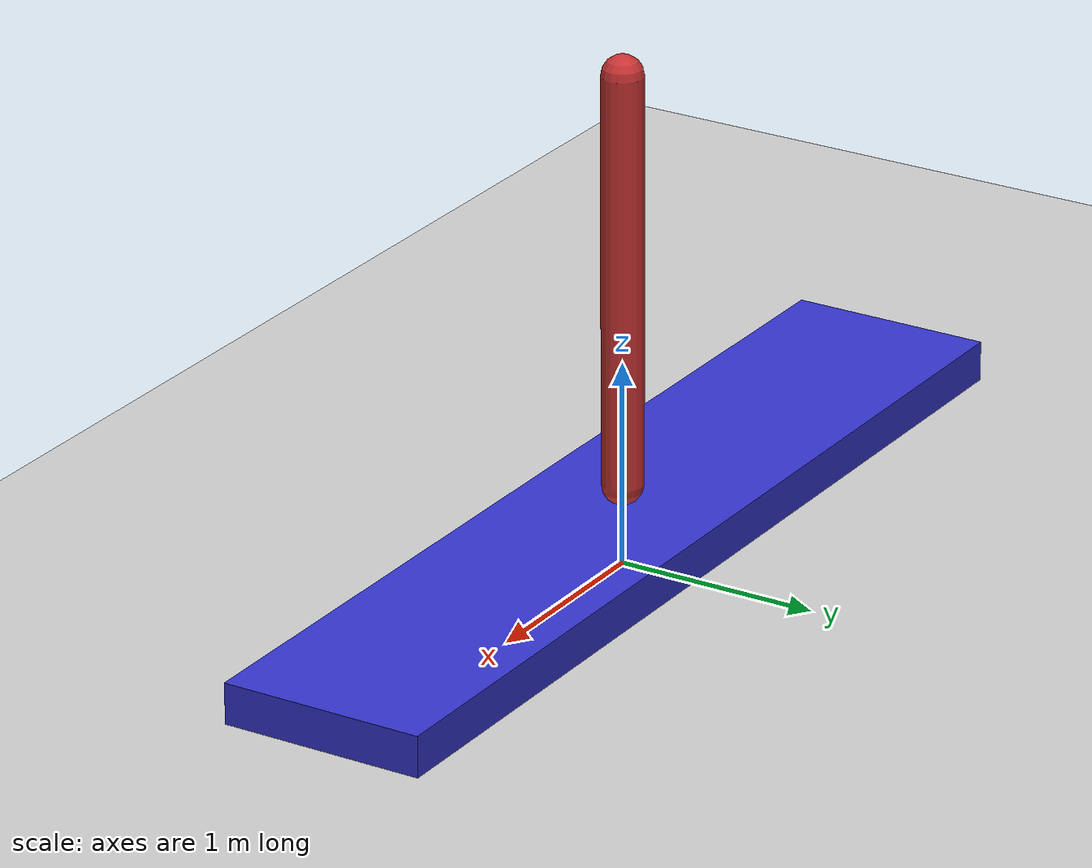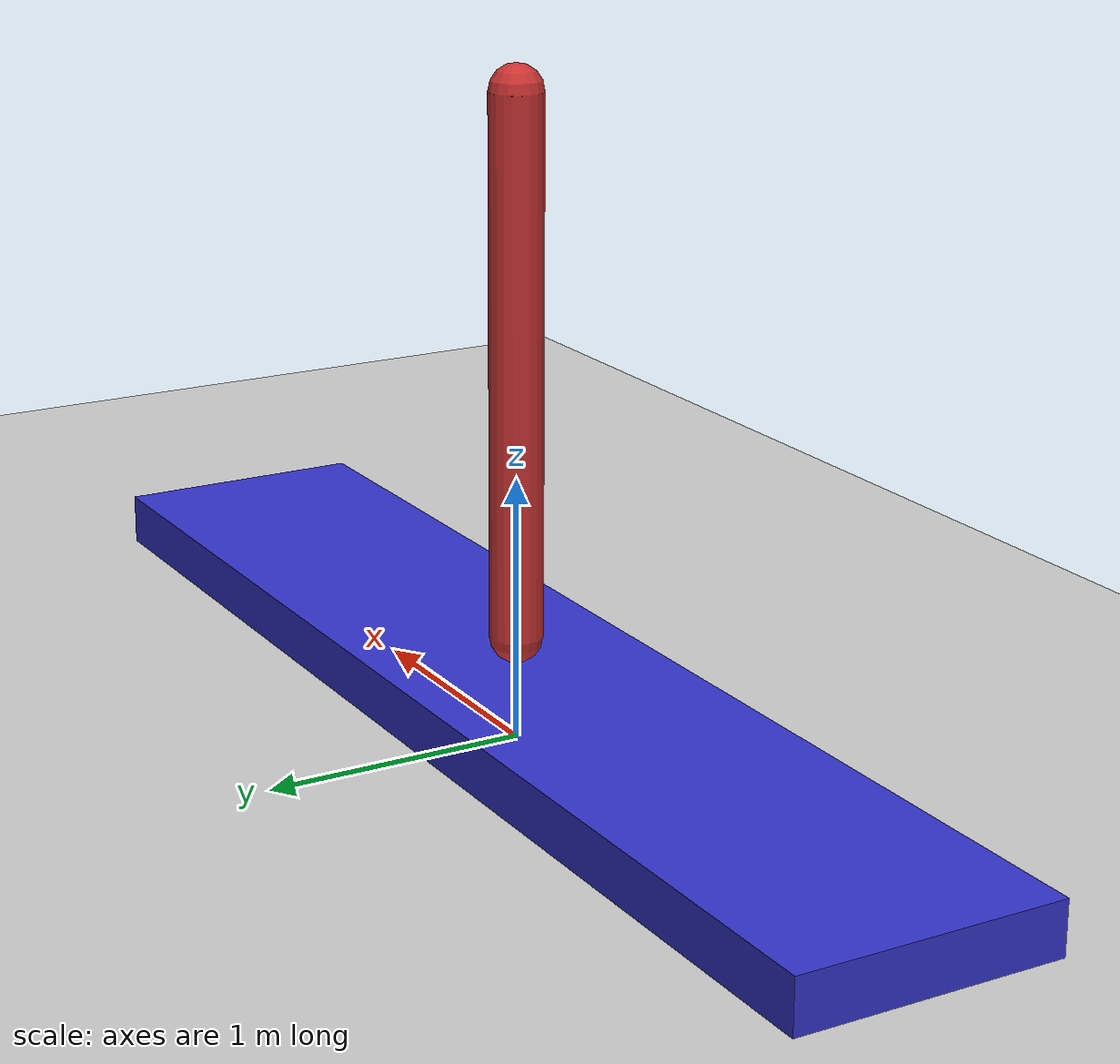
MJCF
<mujoco>

    <!-- PHYSICS -->

    <option gravity="0 0 -9.81"
            timestep="0.01"/>

    <!-- VISUAL -->

    <visual>
        <global offwidth="1280"
                offheight="720"/>
    </visual>

    <!-- WORLD -->

    <worldbody>

        <!-- CAMERA -->
        <camera
            name="main"
            pos="0 -15 4"
            xyaxes="1 0 0 0 0 1"/>

        <!-- GROUND -->
        <geom
            type="plane"
            size="30 30 0.1"
            rgba="0.8 0.8 0.8 1"/>

        <!-- MOVING PLATFORM -->

        <body name="platform"
              pos="0 0 0.2">

            <!-- ONLY TRANSLATION ALONG X -->
            <joint
                name="platform_slide"
                type="slide"
                axis="1 0 0"
                damping="0.2"/>

            <!-- PLATFORM GEOMETRY -->
            <geom
                type="box"
                size="2.5 0.5 0.1"
                rgba="0.2 0.2 0.8 1"/>

            <!-- SEGWAY / PENDULUM -->

            <body name="segway"
                  pos="0 0 0.2">

                <!-- ONLY PITCH ROTATION -->
                <joint
                    name="segway_pitch"
                    type="hinge"
                    axis="0 1 0"
                    damping="0.001"/>

                <!-- PENDULUM BODY -->
                <geom
                    type="capsule"
                    fromto="0 0 0 0 0 2"
                    size="0.1"
                    rgba="0.8 0.2 0.2 1"/>

            </body>

        </body>

    </worldbody>

    <!-- ACTUATOR -->

    <actuator>

        <motor
            name="segway_motor"
            joint="segway_pitch"
            gear="150"/>

    </actuator>

</mujoco>
